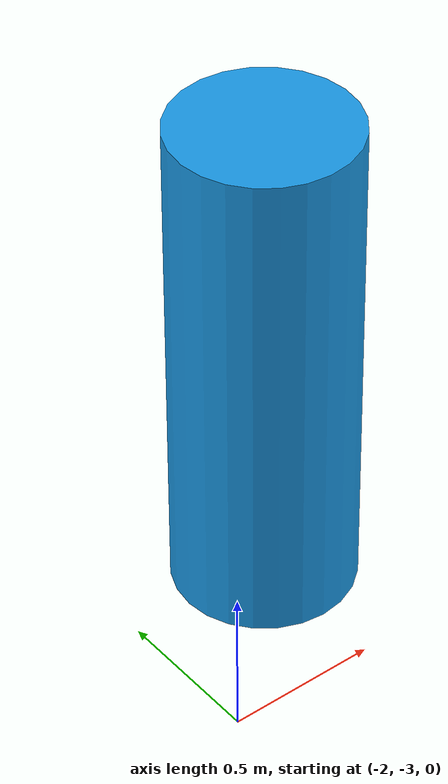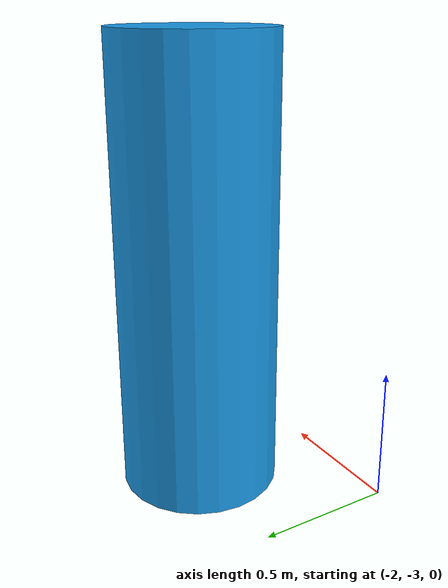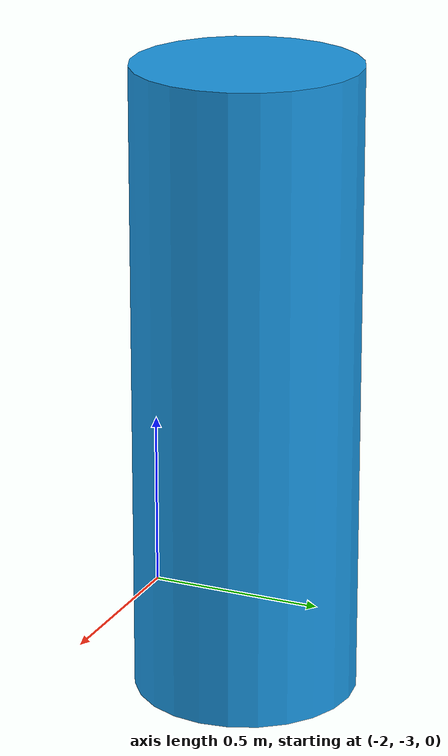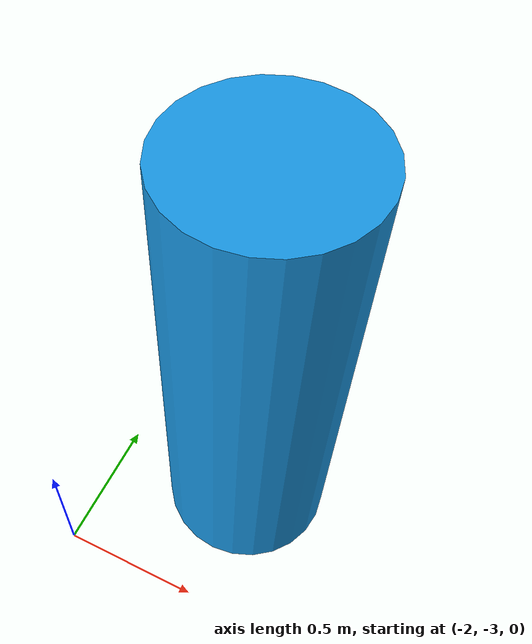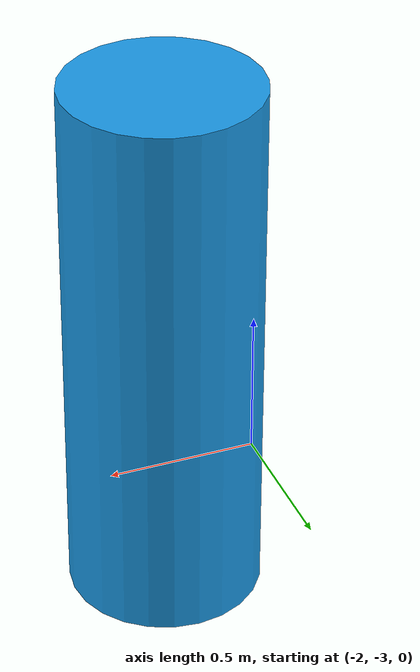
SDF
<sdf version='1.7'>
  <world name='default'>
    <!-- 动态障碍物：圆柱体，命名符合 fake_detector 识别规则 -->
    <model name="dynamic_cylinder_0.6_0.6_1.7">
      <!-- 场景：左下方区域直线往返，循环执行 -->
      <!-- 无人机在原点(0,0,0)，朝向向下(-Y)，障碍物在左下方(-X, -Y)循环往返 -->
      <!-- 初始位置：左下方 (-1.5, -2.5, 0) -->
      <pose>-1.5 -2.5 0 0 0 0</pose>
      <static>0</static>
      <link name="body">
        <inertial>
          <mass>5</mass>
          <inertia>
            <ixx>0.1</ixx>
            <iyy>0.1</iyy>
            <izz>0.1</izz>
            <ixy>0</ixy>
            <ixz>0</ixz>
            <iyz>0</iyz>
          </inertia>
        </inertial>
        <collision name="collision">
          <pose>0 0 0.85 0 0 0</pose>
          <geometry>
            <cylinder>
              <radius>0.3</radius>
              <length>1.7</length>
            </cylinder>
          </geometry>
        </collision>
        <visual name="visual">
          <pose>0 0 0.85 0 0 0</pose>
          <geometry>
            <cylinder>
              <radius>0.3</radius>
              <length>1.7</length>
            </cylinder>
          </geometry>
          <material>
            <ambient>0.1 0.6 0.9 1</ambient>
            <diffuse>0.1 0.6 0.9 1</diffuse>
          </material>
        </visual>
      </link>

      <plugin name="obstacle_motion" filename="libobstaclePathPlugin.so">
        <loop>1</loop> <!-- 循环执行 -->
        <sin>0</sin>
        <velocity>1.5</velocity> <!-- 直线速度，可按需调整 -->
        <angular_velocity>0.0</angular_velocity> <!-- 不转弯 -->
        <path>
          <!-- 左下方区域往返：(-1.5,-2.5) ↔ (-3.5,-4.5) -->
          <waypoint>-1.5 -2.5 0.0</waypoint>
          <waypoint>-3.5 -4.5 0.0</waypoint>
          <waypoint>-1.5 -2.5 0.0</waypoint>
          <waypoint>-3.5 -4.5 0.0</waypoint>
        </path>
      </plugin>
    </model>

    <light name='sun' type='directional'>
      <cast_shadows>1</cast_shadows>
      <pose>0 0 10 0 -0 0</pose>
      <diffuse>0.8 0.8 0.8 1</diffuse>
      <specular>0.2 0.2 0.2 1</specular>
      <attenuation>
        <range>1000</range>
        <constant>0.9</constant>
        <linear>0.01</linear>
        <quadratic>0.001</quadratic>
      </attenuation>
      <direction>-0.5 0.1 -0.9</direction>
      <spot>
        <inner_angle>0</inner_angle>
        <outer_angle>0</outer_angle>
        <falloff>0</falloff>
      </spot>
    </light>

    <model name='ground_plane'>
      <static>1</static>
      <link name='link'>
        <collision name='collision'>
          <geometry>
            <plane>
              <normal>0 0 1</normal>
              <size>100 100</size>
            </plane>
          </geometry>
        </collision>
      </link>
    </model>

    <physics type='ode'>
      <max_step_size>0.001</max_step_size>
      <real_time_factor>1</real_time_factor>
      <real_time_update_rate>1000</real_time_update_rate>
    </physics>

    <scene>
      <ambient>0.4 0.4 0.4 1</ambient>
      <background>0.7 0.7 0.7 1</background>
      <shadows>1</shadows>
    </scene>

    <gui fullscreen='0'>
      <camera name='user_camera'>
        <pose>6.39292 -16.0551 24.6198 0 0.913797 2.1162</pose>
        <view_controller>orbit</view_controller>
        <projection_type>perspective</projection_type>
      </camera>
    </gui>
  </world>
</sdf>
